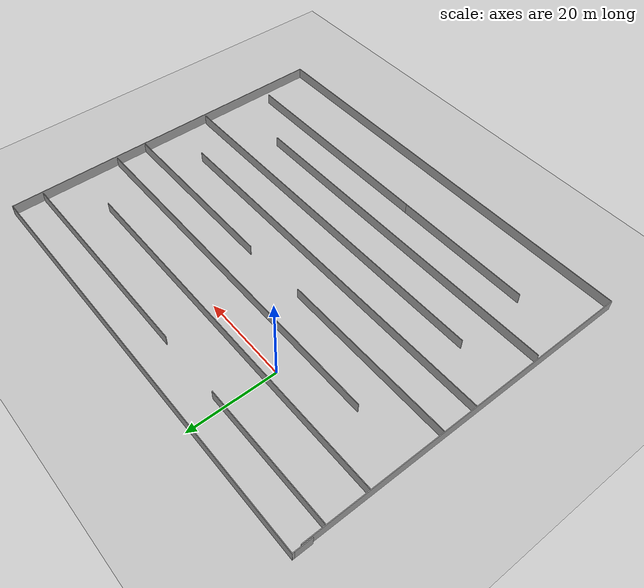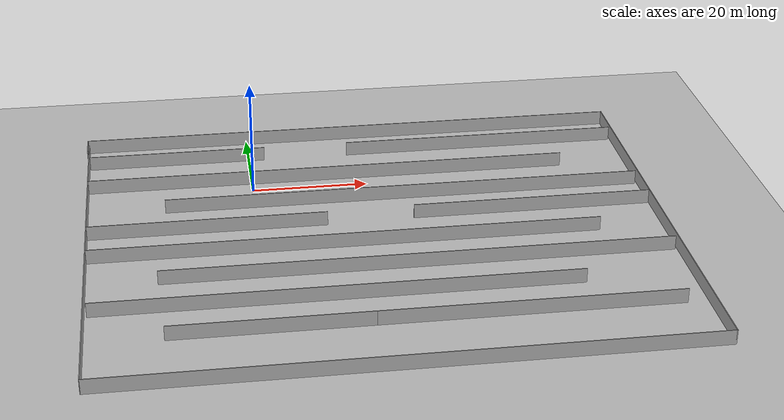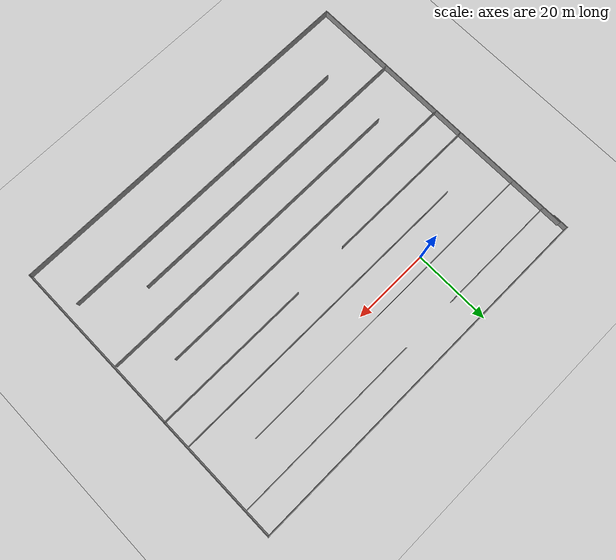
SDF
<sdf version="1.7">
 <world name="default">
  <light name="sun" type="directional">
   <pose>0 0 10 0 -0 0</pose>
   <diffuse>0.8 0.8 0.8 1</diffuse>
   <specular>0.2 0.2 0.2 1</specular>
   <attenuation>
    <range>1000</range>
    <constant>0.9</constant>
    <linear>0.01</linear>
    <quadratic>0.001</quadratic>
   </attenuation>
   <direction>-0.5 0.1 -0.9</direction>
   <spot><inner_angle>0</inner_angle><outer_angle>0</outer_angle><falloff>0</falloff></spot>
  </light>
  <model name="ground_plane">
   <static>1</static>
   <link name="link">
    <collision name="collision">
     <geometry><plane><normal>0 0 1</normal><size>100 100</size></plane></geometry>
     <surface>
      <contact><collide_bitmask>65535</collide_bitmask></contact>
      <friction><ode><mu>100</mu><mu2>50</mu2></ode></friction>
     </surface>
    </collision>
    <visual name="visual">
     <cast_shadows>0</cast_shadows>
     <geometry><plane><normal>0 0 1</normal><size>100 100</size></plane></geometry>
     <material>
      <script><uri>file://media/materials/scripts/gazebo.material</uri><name>Gazebo/Grey</name></script>
     </material>
    </visual>
   </link>
  </model>
  <gravity>0 0 -9.8</gravity>
  <magnetic_field>6e-06 2.3e-05 -4.2e-05</magnetic_field>
  <atmosphere type="adiabatic"/>
  <physics type="ode">
   <max_step_size>0.001</max_step_size>
   <real_time_factor>1</real_time_factor>
   <real_time_update_rate>1000</real_time_update_rate>
  </physics>
  <scene><ambient>0.4 0.4 0.4 1</ambient><background>0.7 0.7 0.7 1</background><shadows>1</shadows></scene>
  <spherical_coordinates>
   <surface_model>EARTH_WGS84</surface_model>
   <latitude_deg>0</latitude_deg>
   <longitude_deg>0</longitude_deg>
   <elevation>0</elevation>
   <heading_deg>0</heading_deg>
  </spherical_coordinates>
  <model name="big_map">
   <pose>19.2937 -20.259 0 0 -0 0</pose>
   <link name="Wall_12">
    <collision name="Wall_12_Collision">
     <geometry><box><size>31.25 0.15 2.5</size></box></geometry>
     <pose>0 0 1.25 0 -0 0</pose>
    </collision>
    <visual name="Wall_12_Visual">
     <pose>0 0 1.25 0 -0 0</pose>
     <geometry><box><size>31.25 0.15 2.5</size></box></geometry>
     <material>
      <script><uri>file://media/materials/scripts/gazebo.material</uri><name>Gazebo/Grey</name></script>
      <ambient>1 1 1 1</ambient>
     </material>
     <meta><layer>0</layer></meta>
    </visual>
    <pose>-32.104 32.4217 0 0 -0 0</pose>
   </link>
   <link name="Wall_14">
    <collision name="Wall_14_Collision">
     <geometry><box><size>49.25 0.15 2.5</size></box></geometry>
     <pose>0 0 1.25 0 -0 0</pose>
    </collision>
    <visual name="Wall_14_Visual">
     <pose>0 0 1.25 0 -0 0</pose>
     <geometry><box><size>49.25 0.15 2.5</size></box></geometry>
     <material>
      <script><uri>file://media/materials/scripts/gazebo.material</uri><name>Gazebo/Grey</name></script>
      <ambient>1 1 1 1</ambient>
     </material>
     <meta><layer>0</layer></meta>
    </visual>
    <pose>23.1941 32.4217 0 0 -0 0</pose>
   </link>
   <link name="Wall_16">
    <collision name="Wall_16_Collision">
     <geometry><box><size>84.25 0.15 2.5</size></box></geometry>
     <pose>0 0 1.25 0 -0 0</pose>
    </collision>
    <visual name="Wall_16_Visual">
     <pose>0 0 1.25 0 -0 0</pose>
     <geometry><box><size>84.25 0.15 2.5</size></box></geometry>
     <material>
      <script><uri>file://media/materials/scripts/gazebo.material</uri><name>Gazebo/Grey</name></script>
      <ambient>1 1 1 1</ambient>
     </material>
     <meta><layer>0</layer></meta>
    </visual>
    <pose>-5.85289 22.9629 0 0 -0 0</pose>
   </link>
   <link name="Wall_18">
    <collision name="Wall_18_Collision">
     <geometry><box><size>82.5 0.15 2.5</size></box></geometry>
     <pose>0 0 1.25 0 -0 0</pose>
    </collision>
    <visual name="Wall_18_Visual">
     <pose>0 0 1.25 0 -0 0</pose>
     <geometry><box><size>82.5 0.15 2.5</size></box></geometry>
     <material>
      <script><uri>file://media/materials/scripts/gazebo.material</uri><name>Gazebo/Grey</name></script>
      <ambient>1 1 1 1</ambient>
     </material>
     <meta><layer>0</layer></meta>
    </visual>
    <pose>6.50531 14.002 0 0 -0 3.14159</pose>
   </link>
   <link name="Wall_2">
    <collision name="Wall_2_Collision">
     <geometry><box><size>77 0.15 2.5</size></box></geometry>
     <pose>0 0 1.25 0 -0 0</pose>
    </collision>
    <visual name="Wall_2_Visual">
     <pose>0 0 1.25 0 -0 0</pose>
     <geometry><box><size>77 0.15 2.5</size></box></geometry>
     <material>
      <script><uri>file://media/materials/scripts/gazebo.material</uri><name>Gazebo/Grey</name></script>
      <ambient>1 1 1 1</ambient>
     </material>
     <meta><layer>0</layer></meta>
    </visual>
    <pose>-47.925 -0.999999 0 0 -0 -1.5708</pose>
   </link>
   <link name="Wall_20">
    <collision name="Wall_20_Collision">
     <geometry><box><size>40.25 0.15 2.5</size></box></geometry>
     <pose>0 0 1.25 0 -0 0</pose>
    </collision>
    <visual name="Wall_20_Visual">
     <pose>0 0 1.25 0 -0 0</pose>
     <geometry><box><size>40.25 0.15 2.5</size></box></geometry>
     <material>
      <script><uri>file://media/materials/scripts/gazebo.material</uri><name>Gazebo/Grey</name></script>
      <ambient>1 1 1 1</ambient>
     </material>
     <meta><layer>0</layer></meta>
    </visual>
    <pose>-27.8529 6.03673 0 0 -0 0</pose>
   </link>
   <link name="Wall_22">
    <collision name="Wall_22_Collision">
     <geometry><box><size>41 0.15 2.5</size></box></geometry>
     <pose>0 0 1.25 0 -0 0</pose>
    </collision>
    <visual name="Wall_22_Visual">
     <pose>0 0 1.25 0 -0 0</pose>
     <geometry><box><size>41 0.15 2.5</size></box></geometry>
     <material>
      <script><uri>file://media/materials/scripts/gazebo.material</uri><name>Gazebo/Grey</name></script>
      <ambient>1 1 1 1</ambient>
     </material>
     <meta><layer>0</layer></meta>
    </visual>
    <pose>27.5322 6.53456 0 0 -0 0</pose>
   </link>
   <link name="Wall_24">
    <collision name="Wall_24_Collision">
     <geometry><box><size>85.25 0.15 2.5</size></box></geometry>
     <pose>0 0 1.25 0 -0 0</pose>
    </collision>
    <visual name="Wall_24_Visual">
     <pose>0 0 1.25 0 -0 0</pose>
     <geometry><box><size>85.25 0.15 2.5</size></box></geometry>
     <material>
      <script><uri>file://media/materials/scripts/gazebo.material</uri><name>Gazebo/Grey</name></script>
      <ambient>1 1 1 1</ambient>
     </material>
     <meta><layer>0</layer></meta>
    </visual>
    <pose>-5.35289 -1.92854 0 0 -0 0</pose>
   </link>
   <link name="Wall_26">
    <collision name="Wall_26_Collision">
     <geometry><box><size>84.25 0.15 2.5</size></box></geometry>
     <pose>0 0 1.25 0 -0 0</pose>
    </collision>
    <visual name="Wall_26_Visual">
     <pose>0 0 1.25 0 -0 0</pose>
     <geometry><box><size>84.25 0.15 2.5</size></box></geometry>
     <material>
      <script><uri>file://media/materials/scripts/gazebo.material</uri><name>Gazebo/Grey</name></script>
      <ambient>1 1 1 1</ambient>
     </material>
     <meta><layer>0</layer></meta>
    </visual>
    <pose>5.63031 -10.1427 0 0 -0 3.14159</pose>
   </link>
   <link name="Wall_28">
    <collision name="Wall_28_Collision">
     <geometry><box><size>78.25 0.15 2.5</size></box></geometry>
     <pose>0 0 1.25 0 -0 0</pose>
    </collision>
    <visual name="Wall_28_Visual">
     <pose>0 0 1.25 0 -0 0</pose>
     <geometry><box><size>78.25 0.15 2.5</size></box></geometry>
     <material>
      <script><uri>file://media/materials/scripts/gazebo.material</uri><name>Gazebo/Grey</name></script>
      <ambient>1 1 1 1</ambient>
     </material>
     <meta><layer>0</layer></meta>
    </visual>
    <pose>-8.35506 -18.6058 0 0 -0 0</pose>
   </link>
   <link name="Wall_3">
    <collision name="Wall_3_Collision">
     <geometry><box><size>96.25 0.15 2.5</size></box></geometry>
     <pose>0 0 1.25 0 -0 0</pose>
    </collision>
    <visual name="Wall_3_Visual">
     <pose>0 0 1.25 0 -0 0</pose>
     <geometry><box><size>96.25 0.15 2.5</size></box></geometry>
     <material>
      <script><uri>file://media/materials/scripts/gazebo.material</uri><name>Gazebo/Grey</name></script>
      <ambient>1 1 1 1</ambient>
     </material>
     <meta><layer>0</layer></meta>
    </visual>
    <pose>0.124999 -39.425 0 0 -0 0</pose>
   </link>
   <link name="Wall_30">
    <collision name="Wall_30_Collision">
     <geometry><box><size>48.75 0.15 2.5</size></box></geometry>
     <pose>0 0 1.25 0 -0 0</pose>
    </collision>
    <visual name="Wall_30_Visual">
     <pose>0 0 1.25 0 -0 0</pose>
     <geometry><box><size>48.75 0.15 2.5</size></box></geometry>
     <material>
      <script><uri>file://media/materials/scripts/gazebo.material</uri><name>Gazebo/Grey</name></script>
      <ambient>1 1 1 1</ambient>
     </material>
     <meta><layer>0</layer></meta>
    </visual>
    <pose>20.3933 -26.82 0 0 -0 3.14159</pose>
   </link>
   <link name="Wall_31">
    <collision name="Wall_31_Collision">
     <geometry><box><size>32 0.15 2.5</size></box></geometry>
     <pose>0 0 1.25 0 -0 0</pose>
    </collision>
    <visual name="Wall_31_Visual">
     <pose>0 0 1.25 0 -0 0</pose>
     <geometry><box><size>32 0.15 2.5</size></box></geometry>
     <material>
      <script><uri>file://media/materials/scripts/gazebo.material</uri><name>Gazebo/Grey</name></script>
      <ambient>1 1 1 1</ambient>
     </material>
     <meta><layer>0</layer></meta>
    </visual>
    <pose>-19.8317 -26.82 0 0 -0 3.14159</pose>
   </link>
   <link name="Wall_4">
    <collision name="Wall_4_Collision">
     <geometry><box><size>79 0.15 2.5</size></box></geometry>
     <pose>0 0 1.25 0 -0 0</pose>
    </collision>
    <visual name="Wall_4_Visual">
     <pose>0 0 1.25 0 -0 0</pose>
     <geometry><box><size>79 0.15 2.5</size></box></geometry>
     <material>
      <script><uri>file://media/materials/scripts/gazebo.material</uri><name>Gazebo/Grey</name></script>
      <ambient>1 1 1 1</ambient>
     </material>
     <meta><layer>0</layer></meta>
    </visual>
    <pose>48.175 1e-06 0 0 -0 1.5708</pose>
   </link>
   <link name="Wall_5">
    <collision name="Wall_5_Collision">
     <geometry><box><size>96.5 0.15 2.5</size></box></geometry>
     <pose>0 0 1.25 0 -0 0</pose>
    </collision>
    <visual name="Wall_5_Visual">
     <pose>0 0 1.25 0 -0 0</pose>
     <geometry><box><size>96.5 0.15 2.5</size></box></geometry>
     <material>
      <script><uri>file://media/materials/scripts/gazebo.material</uri><name>Gazebo/Grey</name></script>
      <ambient>1 1 1 1</ambient>
     </material>
     <meta><layer>0</layer></meta>
    </visual>
    <pose>-1e-06 39.425 0 0 -0 3.14159</pose>
   </link>
   <link name="Wall_6">
    <collision name="Wall_6_Collision">
     <geometry><box><size>0.5 0.15 2.5</size></box></geometry>
     <pose>0 0 1.25 0 -0 0</pose>
    </collision>
    <visual name="Wall_6_Visual">
     <pose>0 0 1.25 0 -0 0</pose>
     <geometry><box><size>0.5 0.15 2.5</size></box></geometry>
     <material>
      <script><uri>file://media/materials/scripts/gazebo.material</uri><name>Gazebo/Grey</name></script>
      <ambient>1 1 1 1</ambient>
     </material>
     <meta><layer>0</layer></meta>
    </visual>
    <pose>-48.175 39.25 0 0 -0 -1.5708</pose>
   </link>
   <link name="Wall_8">
    <collision name="Wall_8_Collision">
     <geometry><box><size>4.25 0.15 2.5</size></box></geometry>
     <pose>0 0 1.25 0 -0 0</pose>
    </collision>
    <visual name="Wall_8_Visual">
     <pose>0 0 1.25 0 -0 0</pose>
     <geometry><box><size>4.25 0.15 2.5</size></box></geometry>
     <material>
      <script><uri>file://media/materials/scripts/gazebo.material</uri><name>Gazebo/Grey</name></script>
      <ambient>1 1 1 1</ambient>
     </material>
     <meta><layer>0</layer></meta>
    </visual>
    <pose>-48.175 37.375 0 0 -0 -1.5708</pose>
   </link>
   <static>1</static>
  </model>
 </world>
</sdf>
